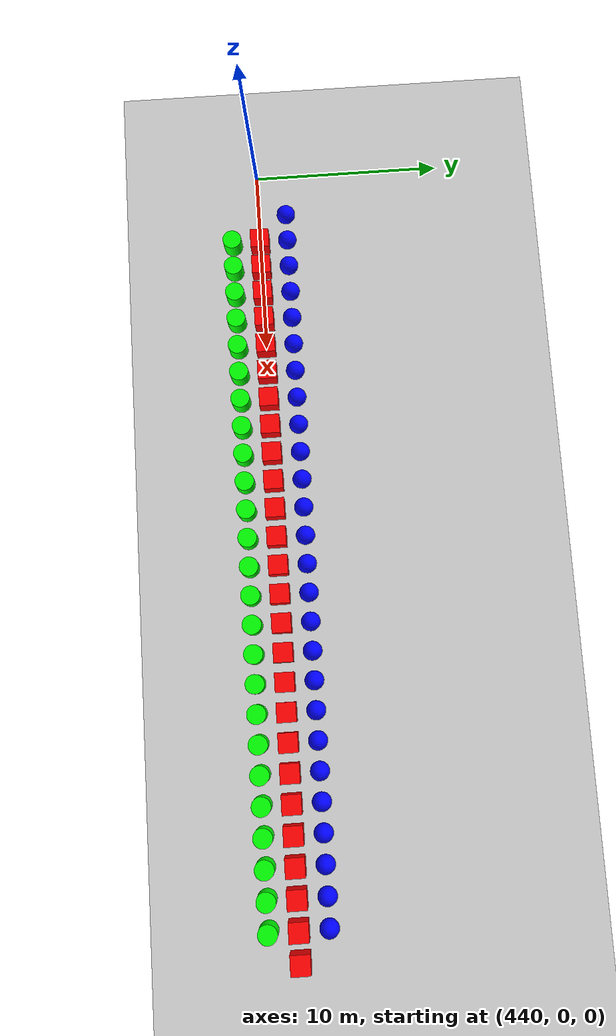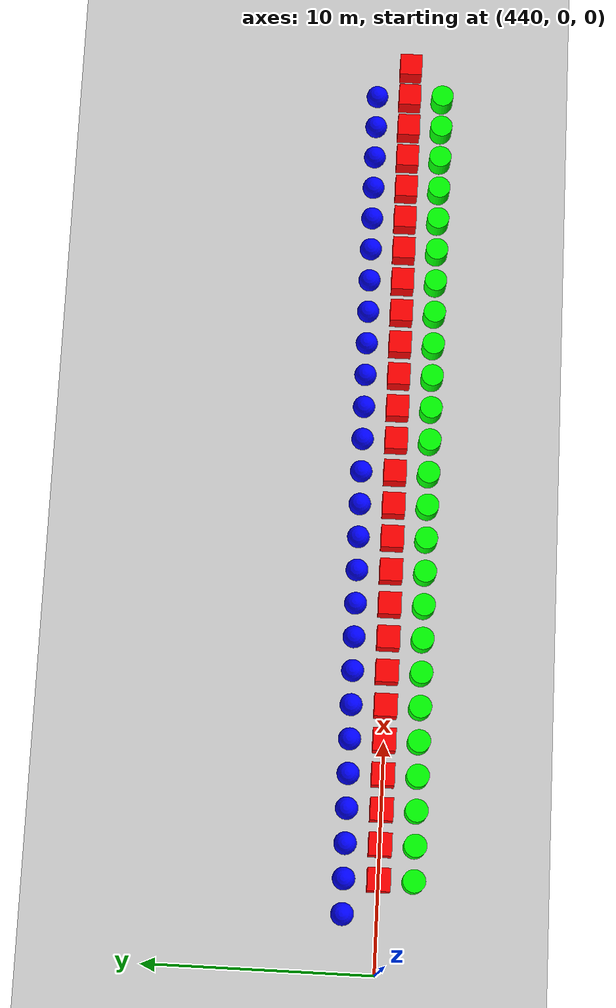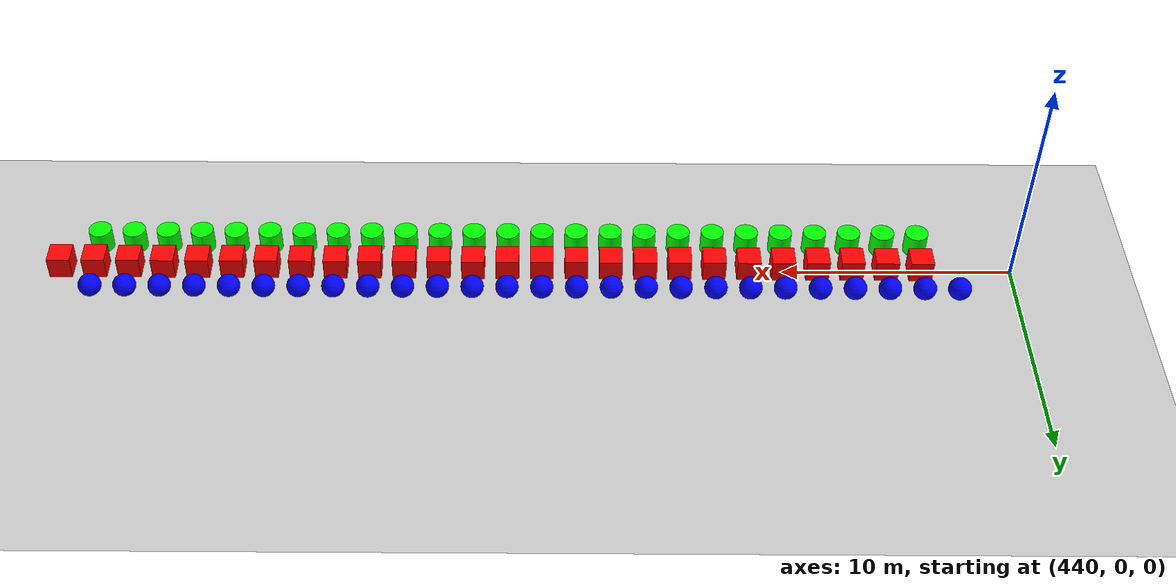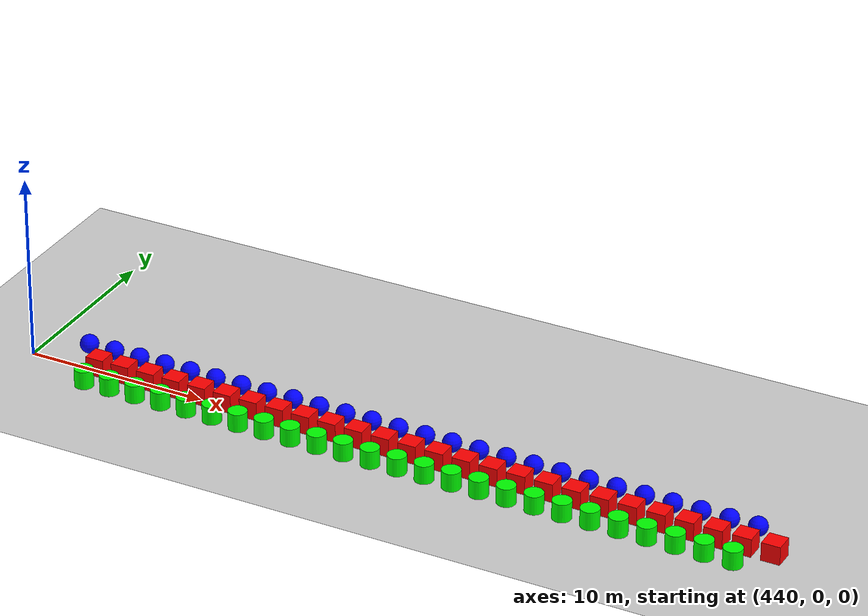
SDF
<sdf version="1.6">
 <world name="shapes">
  <model name="ground_plane">
   <static>true</static>
   <link name="link">
    <collision name="collision">
     <geometry><plane><normal>0 0 1</normal><size>100 100</size></plane></geometry>
    </collision>
    <visual name="visual">
     <geometry><plane><normal>0 0 1</normal><size>100 100</size></plane></geometry>
     <material>
      <ambient>0.8 0.8 0.8 1</ambient>
      <diffuse>0.8 0.8 0.8 1</diffuse>
      <specular>0.8 0.8 0.8 1</specular>
     </material>
    </visual>
   </link>
  </model>
  <model name="sphere_795">
   <static>false</static>
   <pose>442.5 1.5 0.5 0 0 0</pose>
   <link name="sphere_link">
    <inertial>
     <inertia><ixx>3</ixx><ixy>0</ixy><ixz>0</ixz><iyy>3</iyy><iyz>0</iyz><izz>3</izz></inertia>
     <mass>3.0</mass>
    </inertial>
    <collision name="sphere_collision"><geometry><sphere><radius>0.5</radius></sphere></geometry></collision>
    <visual name="sphere_visual">
     <geometry><sphere><radius>0.5</radius></sphere></geometry>
     <material><ambient>0 0 1 1</ambient><diffuse>0 0 1 1</diffuse><specular>0 0 1 1</specular></material>
    </visual>
   </link>
  </model>
  <model name="box_796">
   <static>false</static>
   <pose>444.0 0 0.5 0 0 0</pose>
   <link name="box_link">
    <inertial>
     <inertia><ixx>1</ixx><ixy>0</ixy><ixz>0</ixz><iyy>1</iyy><iyz>0</iyz><izz>1</izz></inertia>
     <mass>1.0</mass>
    </inertial>
    <collision name="box_collision"><geometry><box><size>1 1 1</size></box></geometry></collision>
    <visual name="box_visual">
     <geometry><box><size>1 1 1</size></box></geometry>
     <material><ambient>1 0 0 1</ambient><diffuse>1 0 0 1</diffuse><specular>1 0 0 1</specular></material>
    </visual>
   </link>
  </model>
  <model name="cylinder_796">
   <static>false</static>
   <pose>444.0 -1.5 0.5 0 0 0</pose>
   <link name="cylinder_link">
    <inertial>
     <inertia><ixx>2</ixx><ixy>0</ixy><ixz>0</ixz><iyy>2</iyy><iyz>0</iyz><izz>2</izz></inertia>
     <mass>2.0</mass>
    </inertial>
    <collision name="cylinder_collision">
     <geometry><cylinder><radius>0.5</radius><length>1.0</length></cylinder></geometry>
    </collision>
    <visual name="cylinder_visual">
     <geometry><cylinder><radius>0.5</radius><length>1.0</length></cylinder></geometry>
     <material><ambient>0 1 0 1</ambient><diffuse>0 1 0 1</diffuse><specular>0 1 0 1</specular></material>
    </visual>
   </link>
  </model>
  <model name="sphere_796">
   <static>false</static>
   <pose>444.0 1.5 0.5 0 0 0</pose>
   <link name="sphere_link">
    <inertial>
     <inertia><ixx>3</ixx><ixy>0</ixy><ixz>0</ixz><iyy>3</iyy><iyz>0</iyz><izz>3</izz></inertia>
     <mass>3.0</mass>
    </inertial>
    <collision name="sphere_collision"><geometry><sphere><radius>0.5</radius></sphere></geometry></collision>
    <visual name="sphere_visual">
     <geometry><sphere><radius>0.5</radius></sphere></geometry>
     <material><ambient>0 0 1 1</ambient><diffuse>0 0 1 1</diffuse><specular>0 0 1 1</specular></material>
    </visual>
   </link>
  </model>
  <model name="box_797">
   <static>false</static>
   <pose>445.5 0 0.5 0 0 0</pose>
   <link name="box_link">
    <inertial>
     <inertia><ixx>1</ixx><ixy>0</ixy><ixz>0</ixz><iyy>1</iyy><iyz>0</iyz><izz>1</izz></inertia>
     <mass>1.0</mass>
    </inertial>
    <collision name="box_collision"><geometry><box><size>1 1 1</size></box></geometry></collision>
    <visual name="box_visual">
     <geometry><box><size>1 1 1</size></box></geometry>
     <material><ambient>1 0 0 1</ambient><diffuse>1 0 0 1</diffuse><specular>1 0 0 1</specular></material>
    </visual>
   </link>
  </model>
  <model name="cylinder_797">
   <static>false</static>
   <pose>445.5 -1.5 0.5 0 0 0</pose>
   <link name="cylinder_link">
    <inertial>
     <inertia><ixx>2</ixx><ixy>0</ixy><ixz>0</ixz><iyy>2</iyy><iyz>0</iyz><izz>2</izz></inertia>
     <mass>2.0</mass>
    </inertial>
    <collision name="cylinder_collision">
     <geometry><cylinder><radius>0.5</radius><length>1.0</length></cylinder></geometry>
    </collision>
    <visual name="cylinder_visual">
     <geometry><cylinder><radius>0.5</radius><length>1.0</length></cylinder></geometry>
     <material><ambient>0 1 0 1</ambient><diffuse>0 1 0 1</diffuse><specular>0 1 0 1</specular></material>
    </visual>
   </link>
  </model>
  <model name="sphere_797">
   <static>false</static>
   <pose>445.5 1.5 0.5 0 0 0</pose>
   <link name="sphere_link">
    <inertial>
     <inertia><ixx>3</ixx><ixy>0</ixy><ixz>0</ixz><iyy>3</iyy><iyz>0</iyz><izz>3</izz></inertia>
     <mass>3.0</mass>
    </inertial>
    <collision name="sphere_collision"><geometry><sphere><radius>0.5</radius></sphere></geometry></collision>
    <visual name="sphere_visual">
     <geometry><sphere><radius>0.5</radius></sphere></geometry>
     <material><ambient>0 0 1 1</ambient><diffuse>0 0 1 1</diffuse><specular>0 0 1 1</specular></material>
    </visual>
   </link>
  </model>
  <model name="box_798">
   <static>false</static>
   <pose>447.0 0 0.5 0 0 0</pose>
   <link name="box_link">
    <inertial>
     <inertia><ixx>1</ixx><ixy>0</ixy><ixz>0</ixz><iyy>1</iyy><iyz>0</iyz><izz>1</izz></inertia>
     <mass>1.0</mass>
    </inertial>
    <collision name="box_collision"><geometry><box><size>1 1 1</size></box></geometry></collision>
    <visual name="box_visual">
     <geometry><box><size>1 1 1</size></box></geometry>
     <material><ambient>1 0 0 1</ambient><diffuse>1 0 0 1</diffuse><specular>1 0 0 1</specular></material>
    </visual>
   </link>
  </model>
  <model name="cylinder_798">
   <static>false</static>
   <pose>447.0 -1.5 0.5 0 0 0</pose>
   <link name="cylinder_link">
    <inertial>
     <inertia><ixx>2</ixx><ixy>0</ixy><ixz>0</ixz><iyy>2</iyy><iyz>0</iyz><izz>2</izz></inertia>
     <mass>2.0</mass>
    </inertial>
    <collision name="cylinder_collision">
     <geometry><cylinder><radius>0.5</radius><length>1.0</length></cylinder></geometry>
    </collision>
    <visual name="cylinder_visual">
     <geometry><cylinder><radius>0.5</radius><length>1.0</length></cylinder></geometry>
     <material><ambient>0 1 0 1</ambient><diffuse>0 1 0 1</diffuse><specular>0 1 0 1</specular></material>
    </visual>
   </link>
  </model>
  <model name="sphere_798">
   <static>false</static>
   <pose>447.0 1.5 0.5 0 0 0</pose>
   <link name="sphere_link">
    <inertial>
     <inertia><ixx>3</ixx><ixy>0</ixy><ixz>0</ixz><iyy>3</iyy><iyz>0</iyz><izz>3</izz></inertia>
     <mass>3.0</mass>
    </inertial>
    <collision name="sphere_collision"><geometry><sphere><radius>0.5</radius></sphere></geometry></collision>
    <visual name="sphere_visual">
     <geometry><sphere><radius>0.5</radius></sphere></geometry>
     <material><ambient>0 0 1 1</ambient><diffuse>0 0 1 1</diffuse><specular>0 0 1 1</specular></material>
    </visual>
   </link>
  </model>
  <model name="box_799">
   <static>false</static>
   <pose>448.5 0 0.5 0 0 0</pose>
   <link name="box_link">
    <inertial>
     <inertia><ixx>1</ixx><ixy>0</ixy><ixz>0</ixz><iyy>1</iyy><iyz>0</iyz><izz>1</izz></inertia>
     <mass>1.0</mass>
    </inertial>
    <collision name="box_collision"><geometry><box><size>1 1 1</size></box></geometry></collision>
    <visual name="box_visual">
     <geometry><box><size>1 1 1</size></box></geometry>
     <material><ambient>1 0 0 1</ambient><diffuse>1 0 0 1</diffuse><specular>1 0 0 1</specular></material>
    </visual>
   </link>
  </model>
  <model name="cylinder_799">
   <static>false</static>
   <pose>448.5 -1.5 0.5 0 0 0</pose>
   <link name="cylinder_link">
    <inertial>
     <inertia><ixx>2</ixx><ixy>0</ixy><ixz>0</ixz><iyy>2</iyy><iyz>0</iyz><izz>2</izz></inertia>
     <mass>2.0</mass>
    </inertial>
    <collision name="cylinder_collision">
     <geometry><cylinder><radius>0.5</radius><length>1.0</length></cylinder></geometry>
    </collision>
    <visual name="cylinder_visual">
     <geometry><cylinder><radius>0.5</radius><length>1.0</length></cylinder></geometry>
     <material><ambient>0 1 0 1</ambient><diffuse>0 1 0 1</diffuse><specular>0 1 0 1</specular></material>
    </visual>
   </link>
  </model>
  <model name="sphere_799">
   <static>false</static>
   <pose>448.5 1.5 0.5 0 0 0</pose>
   <link name="sphere_link">
    <inertial>
     <inertia><ixx>3</ixx><ixy>0</ixy><ixz>0</ixz><iyy>3</iyy><iyz>0</iyz><izz>3</izz></inertia>
     <mass>3.0</mass>
    </inertial>
    <collision name="sphere_collision"><geometry><sphere><radius>0.5</radius></sphere></geometry></collision>
    <visual name="sphere_visual">
     <geometry><sphere><radius>0.5</radius></sphere></geometry>
     <material><ambient>0 0 1 1</ambient><diffuse>0 0 1 1</diffuse><specular>0 0 1 1</specular></material>
    </visual>
   </link>
  </model>
  <model name="box_800">
   <static>false</static>
   <pose>450.0 0 0.5 0 0 0</pose>
   <link name="box_link">
    <inertial>
     <inertia><ixx>1</ixx><ixy>0</ixy><ixz>0</ixz><iyy>1</iyy><iyz>0</iyz><izz>1</izz></inertia>
     <mass>1.0</mass>
    </inertial>
    <collision name="box_collision"><geometry><box><size>1 1 1</size></box></geometry></collision>
    <visual name="box_visual">
     <geometry><box><size>1 1 1</size></box></geometry>
     <material><ambient>1 0 0 1</ambient><diffuse>1 0 0 1</diffuse><specular>1 0 0 1</specular></material>
    </visual>
   </link>
  </model>
  <model name="cylinder_800">
   <static>false</static>
   <pose>450.0 -1.5 0.5 0 0 0</pose>
   <link name="cylinder_link">
    <inertial>
     <inertia><ixx>2</ixx><ixy>0</ixy><ixz>0</ixz><iyy>2</iyy><iyz>0</iyz><izz>2</izz></inertia>
     <mass>2.0</mass>
    </inertial>
    <collision name="cylinder_collision">
     <geometry><cylinder><radius>0.5</radius><length>1.0</length></cylinder></geometry>
    </collision>
    <visual name="cylinder_visual">
     <geometry><cylinder><radius>0.5</radius><length>1.0</length></cylinder></geometry>
     <material><ambient>0 1 0 1</ambient><diffuse>0 1 0 1</diffuse><specular>0 1 0 1</specular></material>
    </visual>
   </link>
  </model>
  <model name="sphere_800">
   <static>false</static>
   <pose>450.0 1.5 0.5 0 0 0</pose>
   <link name="sphere_link">
    <inertial>
     <inertia><ixx>3</ixx><ixy>0</ixy><ixz>0</ixz><iyy>3</iyy><iyz>0</iyz><izz>3</izz></inertia>
     <mass>3.0</mass>
    </inertial>
    <collision name="sphere_collision"><geometry><sphere><radius>0.5</radius></sphere></geometry></collision>
    <visual name="sphere_visual">
     <geometry><sphere><radius>0.5</radius></sphere></geometry>
     <material><ambient>0 0 1 1</ambient><diffuse>0 0 1 1</diffuse><specular>0 0 1 1</specular></material>
    </visual>
   </link>
  </model>
  <model name="box_801">
   <static>false</static>
   <pose>451.5 0 0.5 0 0 0</pose>
   <link name="box_link">
    <inertial>
     <inertia><ixx>1</ixx><ixy>0</ixy><ixz>0</ixz><iyy>1</iyy><iyz>0</iyz><izz>1</izz></inertia>
     <mass>1.0</mass>
    </inertial>
    <collision name="box_collision"><geometry><box><size>1 1 1</size></box></geometry></collision>
    <visual name="box_visual">
     <geometry><box><size>1 1 1</size></box></geometry>
     <material><ambient>1 0 0 1</ambient><diffuse>1 0 0 1</diffuse><specular>1 0 0 1</specular></material>
    </visual>
   </link>
  </model>
  <model name="cylinder_801">
   <static>false</static>
   <pose>451.5 -1.5 0.5 0 0 0</pose>
   <link name="cylinder_link">
    <inertial>
     <inertia><ixx>2</ixx><ixy>0</ixy><ixz>0</ixz><iyy>2</iyy><iyz>0</iyz><izz>2</izz></inertia>
     <mass>2.0</mass>
    </inertial>
    <collision name="cylinder_collision">
     <geometry><cylinder><radius>0.5</radius><length>1.0</length></cylinder></geometry>
    </collision>
    <visual name="cylinder_visual">
     <geometry><cylinder><radius>0.5</radius><length>1.0</length></cylinder></geometry>
     <material><ambient>0 1 0 1</ambient><diffuse>0 1 0 1</diffuse><specular>0 1 0 1</specular></material>
    </visual>
   </link>
  </model>
  <model name="sphere_801">
   <static>false</static>
   <pose>451.5 1.5 0.5 0 0 0</pose>
   <link name="sphere_link">
    <inertial>
     <inertia><ixx>3</ixx><ixy>0</ixy><ixz>0</ixz><iyy>3</iyy><iyz>0</iyz><izz>3</izz></inertia>
     <mass>3.0</mass>
    </inertial>
    <collision name="sphere_collision"><geometry><sphere><radius>0.5</radius></sphere></geometry></collision>
    <visual name="sphere_visual">
     <geometry><sphere><radius>0.5</radius></sphere></geometry>
     <material><ambient>0 0 1 1</ambient><diffuse>0 0 1 1</diffuse><specular>0 0 1 1</specular></material>
    </visual>
   </link>
  </model>
  <model name="box_802">
   <static>false</static>
   <pose>453.0 0 0.5 0 0 0</pose>
   <link name="box_link">
    <inertial>
     <inertia><ixx>1</ixx><ixy>0</ixy><ixz>0</ixz><iyy>1</iyy><iyz>0</iyz><izz>1</izz></inertia>
     <mass>1.0</mass>
    </inertial>
    <collision name="box_collision"><geometry><box><size>1 1 1</size></box></geometry></collision>
    <visual name="box_visual">
     <geometry><box><size>1 1 1</size></box></geometry>
     <material><ambient>1 0 0 1</ambient><diffuse>1 0 0 1</diffuse><specular>1 0 0 1</specular></material>
    </visual>
   </link>
  </model>
  <model name="cylinder_802">
   <static>false</static>
   <pose>453.0 -1.5 0.5 0 0 0</pose>
   <link name="cylinder_link">
    <inertial>
     <inertia><ixx>2</ixx><ixy>0</ixy><ixz>0</ixz><iyy>2</iyy><iyz>0</iyz><izz>2</izz></inertia>
     <mass>2.0</mass>
    </inertial>
    <collision name="cylinder_collision">
     <geometry><cylinder><radius>0.5</radius><length>1.0</length></cylinder></geometry>
    </collision>
    <visual name="cylinder_visual">
     <geometry><cylinder><radius>0.5</radius><length>1.0</length></cylinder></geometry>
     <material><ambient>0 1 0 1</ambient><diffuse>0 1 0 1</diffuse><specular>0 1 0 1</specular></material>
    </visual>
   </link>
  </model>
  <model name="sphere_802">
   <static>false</static>
   <pose>453.0 1.5 0.5 0 0 0</pose>
   <link name="sphere_link">
    <inertial>
     <inertia><ixx>3</ixx><ixy>0</ixy><ixz>0</ixz><iyy>3</iyy><iyz>0</iyz><izz>3</izz></inertia>
     <mass>3.0</mass>
    </inertial>
    <collision name="sphere_collision"><geometry><sphere><radius>0.5</radius></sphere></geometry></collision>
    <visual name="sphere_visual">
     <geometry><sphere><radius>0.5</radius></sphere></geometry>
     <material><ambient>0 0 1 1</ambient><diffuse>0 0 1 1</diffuse><specular>0 0 1 1</specular></material>
    </visual>
   </link>
  </model>
  <model name="box_803">
   <static>false</static>
   <pose>454.5 0 0.5 0 0 0</pose>
   <link name="box_link">
    <inertial>
     <inertia><ixx>1</ixx><ixy>0</ixy><ixz>0</ixz><iyy>1</iyy><iyz>0</iyz><izz>1</izz></inertia>
     <mass>1.0</mass>
    </inertial>
    <collision name="box_collision"><geometry><box><size>1 1 1</size></box></geometry></collision>
    <visual name="box_visual">
     <geometry><box><size>1 1 1</size></box></geometry>
     <material><ambient>1 0 0 1</ambient><diffuse>1 0 0 1</diffuse><specular>1 0 0 1</specular></material>
    </visual>
   </link>
  </model>
  <model name="cylinder_803">
   <static>false</static>
   <pose>454.5 -1.5 0.5 0 0 0</pose>
   <link name="cylinder_link">
    <inertial>
     <inertia><ixx>2</ixx><ixy>0</ixy><ixz>0</ixz><iyy>2</iyy><iyz>0</iyz><izz>2</izz></inertia>
     <mass>2.0</mass>
    </inertial>
    <collision name="cylinder_collision">
     <geometry><cylinder><radius>0.5</radius><length>1.0</length></cylinder></geometry>
    </collision>
    <visual name="cylinder_visual">
     <geometry><cylinder><radius>0.5</radius><length>1.0</length></cylinder></geometry>
     <material><ambient>0 1 0 1</ambient><diffuse>0 1 0 1</diffuse><specular>0 1 0 1</specular></material>
    </visual>
   </link>
  </model>
  <model name="sphere_803">
   <static>false</static>
   <pose>454.5 1.5 0.5 0 0 0</pose>
   <link name="sphere_link">
    <inertial>
     <inertia><ixx>3</ixx><ixy>0</ixy><ixz>0</ixz><iyy>3</iyy><iyz>0</iyz><izz>3</izz></inertia>
     <mass>3.0</mass>
    </inertial>
    <collision name="sphere_collision"><geometry><sphere><radius>0.5</radius></sphere></geometry></collision>
    <visual name="sphere_visual">
     <geometry><sphere><radius>0.5</radius></sphere></geometry>
     <material><ambient>0 0 1 1</ambient><diffuse>0 0 1 1</diffuse><specular>0 0 1 1</specular></material>
    </visual>
   </link>
  </model>
  <model name="box_804">
   <static>false</static>
   <pose>456.0 0 0.5 0 0 0</pose>
   <link name="box_link">
    <inertial>
     <inertia><ixx>1</ixx><ixy>0</ixy><ixz>0</ixz><iyy>1</iyy><iyz>0</iyz><izz>1</izz></inertia>
     <mass>1.0</mass>
    </inertial>
    <collision name="box_collision"><geometry><box><size>1 1 1</size></box></geometry></collision>
    <visual name="box_visual">
     <geometry><box><size>1 1 1</size></box></geometry>
     <material><ambient>1 0 0 1</ambient><diffuse>1 0 0 1</diffuse><specular>1 0 0 1</specular></material>
    </visual>
   </link>
  </model>
  <model name="cylinder_804">
   <static>false</static>
   <pose>456.0 -1.5 0.5 0 0 0</pose>
   <link name="cylinder_link">
    <inertial>
     <inertia><ixx>2</ixx><ixy>0</ixy><ixz>0</ixz><iyy>2</iyy><iyz>0</iyz><izz>2</izz></inertia>
     <mass>2.0</mass>
    </inertial>
    <collision name="cylinder_collision">
     <geometry><cylinder><radius>0.5</radius><length>1.0</length></cylinder></geometry>
    </collision>
    <visual name="cylinder_visual">
     <geometry><cylinder><radius>0.5</radius><length>1.0</length></cylinder></geometry>
     <material><ambient>0 1 0 1</ambient><diffuse>0 1 0 1</diffuse><specular>0 1 0 1</specular></material>
    </visual>
   </link>
  </model>
  <model name="sphere_804">
   <static>false</static>
   <pose>456.0 1.5 0.5 0 0 0</pose>
   <link name="sphere_link">
    <inertial>
     <inertia><ixx>3</ixx><ixy>0</ixy><ixz>0</ixz><iyy>3</iyy><iyz>0</iyz><izz>3</izz></inertia>
     <mass>3.0</mass>
    </inertial>
    <collision name="sphere_collision"><geometry><sphere><radius>0.5</radius></sphere></geometry></collision>
    <visual name="sphere_visual">
     <geometry><sphere><radius>0.5</radius></sphere></geometry>
     <material><ambient>0 0 1 1</ambient><diffuse>0 0 1 1</diffuse><specular>0 0 1 1</specular></material>
    </visual>
   </link>
  </model>
  <model name="box_805">
   <static>false</static>
   <pose>457.5 0 0.5 0 0 0</pose>
   <link name="box_link">
    <inertial>
     <inertia><ixx>1</ixx><ixy>0</ixy><ixz>0</ixz><iyy>1</iyy><iyz>0</iyz><izz>1</izz></inertia>
     <mass>1.0</mass>
    </inertial>
    <collision name="box_collision"><geometry><box><size>1 1 1</size></box></geometry></collision>
    <visual name="box_visual">
     <geometry><box><size>1 1 1</size></box></geometry>
     <material><ambient>1 0 0 1</ambient><diffuse>1 0 0 1</diffuse><specular>1 0 0 1</specular></material>
    </visual>
   </link>
  </model>
  <model name="cylinder_805">
   <static>false</static>
   <pose>457.5 -1.5 0.5 0 0 0</pose>
   <link name="cylinder_link">
    <inertial>
     <inertia><ixx>2</ixx><ixy>0</ixy><ixz>0</ixz><iyy>2</iyy><iyz>0</iyz><izz>2</izz></inertia>
     <mass>2.0</mass>
    </inertial>
    <collision name="cylinder_collision">
     <geometry><cylinder><radius>0.5</radius><length>1.0</length></cylinder></geometry>
    </collision>
    <visual name="cylinder_visual">
     <geometry><cylinder><radius>0.5</radius><length>1.0</length></cylinder></geometry>
     <material><ambient>0 1 0 1</ambient><diffuse>0 1 0 1</diffuse><specular>0 1 0 1</specular></material>
    </visual>
   </link>
  </model>
  <model name="sphere_805">
   <static>false</static>
   <pose>457.5 1.5 0.5 0 0 0</pose>
   <link name="sphere_link">
    <inertial>
     <inertia><ixx>3</ixx><ixy>0</ixy><ixz>0</ixz><iyy>3</iyy><iyz>0</iyz><izz>3</izz></inertia>
     <mass>3.0</mass>
    </inertial>
    <collision name="sphere_collision"><geometry><sphere><radius>0.5</radius></sphere></geometry></collision>
    <visual name="sphere_visual">
     <geometry><sphere><radius>0.5</radius></sphere></geometry>
     <material><ambient>0 0 1 1</ambient><diffuse>0 0 1 1</diffuse><specular>0 0 1 1</specular></material>
    </visual>
   </link>
  </model>
  <model name="box_806">
   <static>false</static>
   <pose>459.0 0 0.5 0 0 0</pose>
   <link name="box_link">
    <inertial>
     <inertia><ixx>1</ixx><ixy>0</ixy><ixz>0</ixz><iyy>1</iyy><iyz>0</iyz><izz>1</izz></inertia>
     <mass>1.0</mass>
    </inertial>
    <collision name="box_collision"><geometry><box><size>1 1 1</size></box></geometry></collision>
    <visual name="box_visual">
     <geometry><box><size>1 1 1</size></box></geometry>
     <material><ambient>1 0 0 1</ambient><diffuse>1 0 0 1</diffuse><specular>1 0 0 1</specular></material>
    </visual>
   </link>
  </model>
  <model name="cylinder_806">
   <static>false</static>
   <pose>459.0 -1.5 0.5 0 0 0</pose>
   <link name="cylinder_link">
    <inertial>
     <inertia><ixx>2</ixx><ixy>0</ixy><ixz>0</ixz><iyy>2</iyy><iyz>0</iyz><izz>2</izz></inertia>
     <mass>2.0</mass>
    </inertial>
    <collision name="cylinder_collision">
     <geometry><cylinder><radius>0.5</radius><length>1.0</length></cylinder></geometry>
    </collision>
    <visual name="cylinder_visual">
     <geometry><cylinder><radius>0.5</radius><length>1.0</length></cylinder></geometry>
     <material><ambient>0 1 0 1</ambient><diffuse>0 1 0 1</diffuse><specular>0 1 0 1</specular></material>
    </visual>
   </link>
  </model>
  <model name="sphere_806">
   <static>false</static>
   <pose>459.0 1.5 0.5 0 0 0</pose>
   <link name="sphere_link">
    <inertial>
     <inertia><ixx>3</ixx><ixy>0</ixy><ixz>0</ixz><iyy>3</iyy><iyz>0</iyz><izz>3</izz></inertia>
     <mass>3.0</mass>
    </inertial>
    <collision name="sphere_collision"><geometry><sphere><radius>0.5</radius></sphere></geometry></collision>
    <visual name="sphere_visual">
     <geometry><sphere><radius>0.5</radius></sphere></geometry>
     <material><ambient>0 0 1 1</ambient><diffuse>0 0 1 1</diffuse><specular>0 0 1 1</specular></material>
    </visual>
   </link>
  </model>
  <model name="box_807">
   <static>false</static>
   <pose>460.5 0 0.5 0 0 0</pose>
   <link name="box_link">
    <inertial>
     <inertia><ixx>1</ixx><ixy>0</ixy><ixz>0</ixz><iyy>1</iyy><iyz>0</iyz><izz>1</izz></inertia>
     <mass>1.0</mass>
    </inertial>
    <collision name="box_collision"><geometry><box><size>1 1 1</size></box></geometry></collision>
    <visual name="box_visual">
     <geometry><box><size>1 1 1</size></box></geometry>
     <material><ambient>1 0 0 1</ambient><diffuse>1 0 0 1</diffuse><specular>1 0 0 1</specular></material>
    </visual>
   </link>
  </model>
  <model name="cylinder_807">
   <static>false</static>
   <pose>460.5 -1.5 0.5 0 0 0</pose>
   <link name="cylinder_link">
    <inertial>
     <inertia><ixx>2</ixx><ixy>0</ixy><ixz>0</ixz><iyy>2</iyy><iyz>0</iyz><izz>2</izz></inertia>
     <mass>2.0</mass>
    </inertial>
    <collision name="cylinder_collision">
     <geometry><cylinder><radius>0.5</radius><length>1.0</length></cylinder></geometry>
    </collision>
    <visual name="cylinder_visual">
     <geometry><cylinder><radius>0.5</radius><length>1.0</length></cylinder></geometry>
     <material><ambient>0 1 0 1</ambient><diffuse>0 1 0 1</diffuse><specular>0 1 0 1</specular></material>
    </visual>
   </link>
  </model>
  <model name="sphere_807">
   <static>false</static>
   <pose>460.5 1.5 0.5 0 0 0</pose>
   <link name="sphere_link">
    <inertial>
     <inertia><ixx>3</ixx><ixy>0</ixy><ixz>0</ixz><iyy>3</iyy><iyz>0</iyz><izz>3</izz></inertia>
     <mass>3.0</mass>
    </inertial>
    <collision name="sphere_collision"><geometry><sphere><radius>0.5</radius></sphere></geometry></collision>
    <visual name="sphere_visual">
     <geometry><sphere><radius>0.5</radius></sphere></geometry>
     <material><ambient>0 0 1 1</ambient><diffuse>0 0 1 1</diffuse><specular>0 0 1 1</specular></material>
    </visual>
   </link>
  </model>
  <model name="box_808">
   <static>false</static>
   <pose>462.0 0 0.5 0 0 0</pose>
   <link name="box_link">
    <inertial>
     <inertia><ixx>1</ixx><ixy>0</ixy><ixz>0</ixz><iyy>1</iyy><iyz>0</iyz><izz>1</izz></inertia>
     <mass>1.0</mass>
    </inertial>
    <collision name="box_collision"><geometry><box><size>1 1 1</size></box></geometry></collision>
    <visual name="box_visual">
     <geometry><box><size>1 1 1</size></box></geometry>
     <material><ambient>1 0 0 1</ambient><diffuse>1 0 0 1</diffuse><specular>1 0 0 1</specular></material>
    </visual>
   </link>
  </model>
  <model name="cylinder_808">
   <static>false</static>
   <pose>462.0 -1.5 0.5 0 0 0</pose>
   <link name="cylinder_link">
    <inertial>
     <inertia><ixx>2</ixx><ixy>0</ixy><ixz>0</ixz><iyy>2</iyy><iyz>0</iyz><izz>2</izz></inertia>
     <mass>2.0</mass>
    </inertial>
    <collision name="cylinder_collision">
     <geometry><cylinder><radius>0.5</radius><length>1.0</length></cylinder></geometry>
    </collision>
    <visual name="cylinder_visual">
     <geometry><cylinder><radius>0.5</radius><length>1.0</length></cylinder></geometry>
     <material><ambient>0 1 0 1</ambient><diffuse>0 1 0 1</diffuse><specular>0 1 0 1</specular></material>
    </visual>
   </link>
  </model>
  <model name="sphere_808">
   <static>false</static>
   <pose>462.0 1.5 0.5 0 0 0</pose>
   <link name="sphere_link">
    <inertial>
     <inertia><ixx>3</ixx><ixy>0</ixy><ixz>0</ixz><iyy>3</iyy><iyz>0</iyz><izz>3</izz></inertia>
     <mass>3.0</mass>
    </inertial>
    <collision name="sphere_collision"><geometry><sphere><radius>0.5</radius></sphere></geometry></collision>
    <visual name="sphere_visual">
     <geometry><sphere><radius>0.5</radius></sphere></geometry>
     <material><ambient>0 0 1 1</ambient><diffuse>0 0 1 1</diffuse><specular>0 0 1 1</specular></material>
    </visual>
   </link>
  </model>
  <model name="box_809">
   <static>false</static>
   <pose>463.5 0 0.5 0 0 0</pose>
   <link name="box_link">
    <inertial>
     <inertia><ixx>1</ixx><ixy>0</ixy><ixz>0</ixz><iyy>1</iyy><iyz>0</iyz><izz>1</izz></inertia>
     <mass>1.0</mass>
    </inertial>
    <collision name="box_collision"><geometry><box><size>1 1 1</size></box></geometry></collision>
    <visual name="box_visual">
     <geometry><box><size>1 1 1</size></box></geometry>
     <material><ambient>1 0 0 1</ambient><diffuse>1 0 0 1</diffuse><specular>1 0 0 1</specular></material>
    </visual>
   </link>
  </model>
  <model name="cylinder_809">
   <static>false</static>
   <pose>463.5 -1.5 0.5 0 0 0</pose>
   <link name="cylinder_link">
    <inertial>
     <inertia><ixx>2</ixx><ixy>0</ixy><ixz>0</ixz><iyy>2</iyy><iyz>0</iyz><izz>2</izz></inertia>
     <mass>2.0</mass>
    </inertial>
    <collision name="cylinder_collision">
     <geometry><cylinder><radius>0.5</radius><length>1.0</length></cylinder></geometry>
    </collision>
    <visual name="cylinder_visual">
     <geometry><cylinder><radius>0.5</radius><length>1.0</length></cylinder></geometry>
     <material><ambient>0 1 0 1</ambient><diffuse>0 1 0 1</diffuse><specular>0 1 0 1</specular></material>
    </visual>
   </link>
  </model>
  <model name="sphere_809">
   <static>false</static>
   <pose>463.5 1.5 0.5 0 0 0</pose>
   <link name="sphere_link">
    <inertial>
     <inertia><ixx>3</ixx><ixy>0</ixy><ixz>0</ixz><iyy>3</iyy><iyz>0</iyz><izz>3</izz></inertia>
     <mass>3.0</mass>
    </inertial>
    <collision name="sphere_collision"><geometry><sphere><radius>0.5</radius></sphere></geometry></collision>
    <visual name="sphere_visual">
     <geometry><sphere><radius>0.5</radius></sphere></geometry>
     <material><ambient>0 0 1 1</ambient><diffuse>0 0 1 1</diffuse><specular>0 0 1 1</specular></material>
    </visual>
   </link>
  </model>
  <model name="box_810">
   <static>false</static>
   <pose>465.0 0 0.5 0 0 0</pose>
   <link name="box_link">
    <inertial>
     <inertia><ixx>1</ixx><ixy>0</ixy><ixz>0</ixz><iyy>1</iyy><iyz>0</iyz><izz>1</izz></inertia>
     <mass>1.0</mass>
    </inertial>
    <collision name="box_collision"><geometry><box><size>1 1 1</size></box></geometry></collision>
    <visual name="box_visual">
     <geometry><box><size>1 1 1</size></box></geometry>
     <material><ambient>1 0 0 1</ambient><diffuse>1 0 0 1</diffuse><specular>1 0 0 1</specular></material>
    </visual>
   </link>
  </model>
  <model name="cylinder_810">
   <static>false</static>
   <pose>465.0 -1.5 0.5 0 0 0</pose>
   <link name="cylinder_link">
    <inertial>
     <inertia><ixx>2</ixx><ixy>0</ixy><ixz>0</ixz><iyy>2</iyy><iyz>0</iyz><izz>2</izz></inertia>
     <mass>2.0</mass>
    </inertial>
    <collision name="cylinder_collision">
     <geometry><cylinder><radius>0.5</radius><length>1.0</length></cylinder></geometry>
    </collision>
    <visual name="cylinder_visual">
     <geometry><cylinder><radius>0.5</radius><length>1.0</length></cylinder></geometry>
     <material><ambient>0 1 0 1</ambient><diffuse>0 1 0 1</diffuse><specular>0 1 0 1</specular></material>
    </visual>
   </link>
  </model>
  <model name="sphere_810">
   <static>false</static>
   <pose>465.0 1.5 0.5 0 0 0</pose>
   <link name="sphere_link">
    <inertial>
     <inertia><ixx>3</ixx><ixy>0</ixy><ixz>0</ixz><iyy>3</iyy><iyz>0</iyz><izz>3</izz></inertia>
     <mass>3.0</mass>
    </inertial>
    <collision name="sphere_collision"><geometry><sphere><radius>0.5</radius></sphere></geometry></collision>
    <visual name="sphere_visual">
     <geometry><sphere><radius>0.5</radius></sphere></geometry>
     <material><ambient>0 0 1 1</ambient><diffuse>0 0 1 1</diffuse><specular>0 0 1 1</specular></material>
    </visual>
   </link>
  </model>
  <model name="box_811">
   <static>false</static>
   <pose>466.5 0 0.5 0 0 0</pose>
   <link name="box_link">
    <inertial>
     <inertia><ixx>1</ixx><ixy>0</ixy><ixz>0</ixz><iyy>1</iyy><iyz>0</iyz><izz>1</izz></inertia>
     <mass>1.0</mass>
    </inertial>
    <collision name="box_collision"><geometry><box><size>1 1 1</size></box></geometry></collision>
    <visual name="box_visual">
     <geometry><box><size>1 1 1</size></box></geometry>
     <material><ambient>1 0 0 1</ambient><diffuse>1 0 0 1</diffuse><specular>1 0 0 1</specular></material>
    </visual>
   </link>
  </model>
  <model name="cylinder_811">
   <static>false</static>
   <pose>466.5 -1.5 0.5 0 0 0</pose>
   <link name="cylinder_link">
    <inertial>
     <inertia><ixx>2</ixx><ixy>0</ixy><ixz>0</ixz><iyy>2</iyy><iyz>0</iyz><izz>2</izz></inertia>
     <mass>2.0</mass>
    </inertial>
    <collision name="cylinder_collision">
     <geometry><cylinder><radius>0.5</radius><length>1.0</length></cylinder></geometry>
    </collision>
    <visual name="cylinder_visual">
     <geometry><cylinder><radius>0.5</radius><length>1.0</length></cylinder></geometry>
     <material><ambient>0 1 0 1</ambient><diffuse>0 1 0 1</diffuse><specular>0 1 0 1</specular></material>
    </visual>
   </link>
  </model>
  <model name="sphere_811">
   <static>false</static>
   <pose>466.5 1.5 0.5 0 0 0</pose>
   <link name="sphere_link">
    <inertial>
     <inertia><ixx>3</ixx><ixy>0</ixy><ixz>0</ixz><iyy>3</iyy><iyz>0</iyz><izz>3</izz></inertia>
     <mass>3.0</mass>
    </inertial>
    <collision name="sphere_collision"><geometry><sphere><radius>0.5</radius></sphere></geometry></collision>
    <visual name="sphere_visual">
     <geometry><sphere><radius>0.5</radius></sphere></geometry>
     <material><ambient>0 0 1 1</ambient><diffuse>0 0 1 1</diffuse><specular>0 0 1 1</specular></material>
    </visual>
   </link>
  </model>
  <model name="box_812">
   <static>false</static>
   <pose>468.0 0 0.5 0 0 0</pose>
   <link name="box_link">
    <inertial>
     <inertia><ixx>1</ixx><ixy>0</ixy><ixz>0</ixz><iyy>1</iyy><iyz>0</iyz><izz>1</izz></inertia>
     <mass>1.0</mass>
    </inertial>
    <collision name="box_collision"><geometry><box><size>1 1 1</size></box></geometry></collision>
    <visual name="box_visual">
     <geometry><box><size>1 1 1</size></box></geometry>
     <material><ambient>1 0 0 1</ambient><diffuse>1 0 0 1</diffuse><specular>1 0 0 1</specular></material>
    </visual>
   </link>
  </model>
  <model name="cylinder_812">
   <static>false</static>
   <pose>468.0 -1.5 0.5 0 0 0</pose>
   <link name="cylinder_link">
    <inertial>
     <inertia><ixx>2</ixx><ixy>0</ixy><ixz>0</ixz><iyy>2</iyy><iyz>0</iyz><izz>2</izz></inertia>
     <mass>2.0</mass>
    </inertial>
    <collision name="cylinder_collision">
     <geometry><cylinder><radius>0.5</radius><length>1.0</length></cylinder></geometry>
    </collision>
    <visual name="cylinder_visual">
     <geometry><cylinder><radius>0.5</radius><length>1.0</length></cylinder></geometry>
     <material><ambient>0 1 0 1</ambient><diffuse>0 1 0 1</diffuse><specular>0 1 0 1</specular></material>
    </visual>
   </link>
  </model>
  <model name="sphere_812">
   <static>false</static>
   <pose>468.0 1.5 0.5 0 0 0</pose>
   <link name="sphere_link">
    <inertial>
     <inertia><ixx>3</ixx><ixy>0</ixy><ixz>0</ixz><iyy>3</iyy><iyz>0</iyz><izz>3</izz></inertia>
     <mass>3.0</mass>
    </inertial>
    <collision name="sphere_collision"><geometry><sphere><radius>0.5</radius></sphere></geometry></collision>
    <visual name="sphere_visual">
     <geometry><sphere><radius>0.5</radius></sphere></geometry>
     <material><ambient>0 0 1 1</ambient><diffuse>0 0 1 1</diffuse><specular>0 0 1 1</specular></material>
    </visual>
   </link>
  </model>
  <model name="box_813">
   <static>false</static>
   <pose>469.5 0 0.5 0 0 0</pose>
   <link name="box_link">
    <inertial>
     <inertia><ixx>1</ixx><ixy>0</ixy><ixz>0</ixz><iyy>1</iyy><iyz>0</iyz><izz>1</izz></inertia>
     <mass>1.0</mass>
    </inertial>
    <collision name="box_collision"><geometry><box><size>1 1 1</size></box></geometry></collision>
    <visual name="box_visual">
     <geometry><box><size>1 1 1</size></box></geometry>
     <material><ambient>1 0 0 1</ambient><diffuse>1 0 0 1</diffuse><specular>1 0 0 1</specular></material>
    </visual>
   </link>
  </model>
  <model name="cylinder_813">
   <static>false</static>
   <pose>469.5 -1.5 0.5 0 0 0</pose>
   <link name="cylinder_link">
    <inertial>
     <inertia><ixx>2</ixx><ixy>0</ixy><ixz>0</ixz><iyy>2</iyy><iyz>0</iyz><izz>2</izz></inertia>
     <mass>2.0</mass>
    </inertial>
    <collision name="cylinder_collision">
     <geometry><cylinder><radius>0.5</radius><length>1.0</length></cylinder></geometry>
    </collision>
    <visual name="cylinder_visual">
     <geometry><cylinder><radius>0.5</radius><length>1.0</length></cylinder></geometry>
     <material><ambient>0 1 0 1</ambient><diffuse>0 1 0 1</diffuse><specular>0 1 0 1</specular></material>
    </visual>
   </link>
  </model>
  <model name="sphere_813">
   <static>false</static>
   <pose>469.5 1.5 0.5 0 0 0</pose>
   <link name="sphere_link">
    <inertial>
     <inertia><ixx>3</ixx><ixy>0</ixy><ixz>0</ixz><iyy>3</iyy><iyz>0</iyz><izz>3</izz></inertia>
     <mass>3.0</mass>
    </inertial>
    <collision name="sphere_collision"><geometry><sphere><radius>0.5</radius></sphere></geometry></collision>
    <visual name="sphere_visual">
     <geometry><sphere><radius>0.5</radius></sphere></geometry>
     <material><ambient>0 0 1 1</ambient><diffuse>0 0 1 1</diffuse><specular>0 0 1 1</specular></material>
    </visual>
   </link>
  </model>
  <model name="box_814">
   <static>false</static>
   <pose>471.0 0 0.5 0 0 0</pose>
   <link name="box_link">
    <inertial>
     <inertia><ixx>1</ixx><ixy>0</ixy><ixz>0</ixz><iyy>1</iyy><iyz>0</iyz><izz>1</izz></inertia>
     <mass>1.0</mass>
    </inertial>
    <collision name="box_collision"><geometry><box><size>1 1 1</size></box></geometry></collision>
    <visual name="box_visual">
     <geometry><box><size>1 1 1</size></box></geometry>
     <material><ambient>1 0 0 1</ambient><diffuse>1 0 0 1</diffuse><specular>1 0 0 1</specular></material>
    </visual>
   </link>
  </model>
  <model name="cylinder_814">
   <static>false</static>
   <pose>471.0 -1.5 0.5 0 0 0</pose>
   <link name="cylinder_link">
    <inertial>
     <inertia><ixx>2</ixx><ixy>0</ixy><ixz>0</ixz><iyy>2</iyy><iyz>0</iyz><izz>2</izz></inertia>
     <mass>2.0</mass>
    </inertial>
    <collision name="cylinder_collision">
     <geometry><cylinder><radius>0.5</radius><length>1.0</length></cylinder></geometry>
    </collision>
    <visual name="cylinder_visual">
     <geometry><cylinder><radius>0.5</radius><length>1.0</length></cylinder></geometry>
     <material><ambient>0 1 0 1</ambient><diffuse>0 1 0 1</diffuse><specular>0 1 0 1</specular></material>
    </visual>
   </link>
  </model>
  <model name="sphere_814">
   <static>false</static>
   <pose>471.0 1.5 0.5 0 0 0</pose>
   <link name="sphere_link">
    <inertial>
     <inertia><ixx>3</ixx><ixy>0</ixy><ixz>0</ixz><iyy>3</iyy><iyz>0</iyz><izz>3</izz></inertia>
     <mass>3.0</mass>
    </inertial>
    <collision name="sphere_collision"><geometry><sphere><radius>0.5</radius></sphere></geometry></collision>
    <visual name="sphere_visual">
     <geometry><sphere><radius>0.5</radius></sphere></geometry>
     <material><ambient>0 0 1 1</ambient><diffuse>0 0 1 1</diffuse><specular>0 0 1 1</specular></material>
    </visual>
   </link>
  </model>
  <model name="box_815">
   <static>false</static>
   <pose>472.5 0 0.5 0 0 0</pose>
   <link name="box_link">
    <inertial>
     <inertia><ixx>1</ixx><ixy>0</ixy><ixz>0</ixz><iyy>1</iyy><iyz>0</iyz><izz>1</izz></inertia>
     <mass>1.0</mass>
    </inertial>
    <collision name="box_collision"><geometry><box><size>1 1 1</size></box></geometry></collision>
    <visual name="box_visual">
     <geometry><box><size>1 1 1</size></box></geometry>
     <material><ambient>1 0 0 1</ambient><diffuse>1 0 0 1</diffuse><specular>1 0 0 1</specular></material>
    </visual>
   </link>
  </model>
  <model name="cylinder_815">
   <static>false</static>
   <pose>472.5 -1.5 0.5 0 0 0</pose>
   <link name="cylinder_link">
    <inertial>
     <inertia><ixx>2</ixx><ixy>0</ixy><ixz>0</ixz><iyy>2</iyy><iyz>0</iyz><izz>2</izz></inertia>
     <mass>2.0</mass>
    </inertial>
    <collision name="cylinder_collision">
     <geometry><cylinder><radius>0.5</radius><length>1.0</length></cylinder></geometry>
    </collision>
    <visual name="cylinder_visual">
     <geometry><cylinder><radius>0.5</radius><length>1.0</length></cylinder></geometry>
     <material><ambient>0 1 0 1</ambient><diffuse>0 1 0 1</diffuse><specular>0 1 0 1</specular></material>
    </visual>
   </link>
  </model>
  <model name="sphere_815">
   <static>false</static>
   <pose>472.5 1.5 0.5 0 0 0</pose>
   <link name="sphere_link">
    <inertial>
     <inertia><ixx>3</ixx><ixy>0</ixy><ixz>0</ixz><iyy>3</iyy><iyz>0</iyz><izz>3</izz></inertia>
     <mass>3.0</mass>
    </inertial>
    <collision name="sphere_collision"><geometry><sphere><radius>0.5</radius></sphere></geometry></collision>
    <visual name="sphere_visual">
     <geometry><sphere><radius>0.5</radius></sphere></geometry>
     <material><ambient>0 0 1 1</ambient><diffuse>0 0 1 1</diffuse><specular>0 0 1 1</specular></material>
    </visual>
   </link>
  </model>
  <model name="box_816">
   <static>false</static>
   <pose>474.0 0 0.5 0 0 0</pose>
   <link name="box_link">
    <inertial>
     <inertia><ixx>1</ixx><ixy>0</ixy><ixz>0</ixz><iyy>1</iyy><iyz>0</iyz><izz>1</izz></inertia>
     <mass>1.0</mass>
    </inertial>
    <collision name="box_collision"><geometry><box><size>1 1 1</size></box></geometry></collision>
    <visual name="box_visual">
     <geometry><box><size>1 1 1</size></box></geometry>
     <material><ambient>1 0 0 1</ambient><diffuse>1 0 0 1</diffuse><specular>1 0 0 1</specular></material>
    </visual>
   </link>
  </model>
  <model name="cylinder_816">
   <static>false</static>
   <pose>474.0 -1.5 0.5 0 0 0</pose>
   <link name="cylinder_link">
    <inertial>
     <inertia><ixx>2</ixx><ixy>0</ixy><ixz>0</ixz><iyy>2</iyy><iyz>0</iyz><izz>2</izz></inertia>
     <mass>2.0</mass>
    </inertial>
    <collision name="cylinder_collision">
     <geometry><cylinder><radius>0.5</radius><length>1.0</length></cylinder></geometry>
    </collision>
    <visual name="cylinder_visual">
     <geometry><cylinder><radius>0.5</radius><length>1.0</length></cylinder></geometry>
     <material><ambient>0 1 0 1</ambient><diffuse>0 1 0 1</diffuse><specular>0 1 0 1</specular></material>
    </visual>
   </link>
  </model>
  <model name="sphere_816">
   <static>false</static>
   <pose>474.0 1.5 0.5 0 0 0</pose>
   <link name="sphere_link">
    <inertial>
     <inertia><ixx>3</ixx><ixy>0</ixy><ixz>0</ixz><iyy>3</iyy><iyz>0</iyz><izz>3</izz></inertia>
     <mass>3.0</mass>
    </inertial>
    <collision name="sphere_collision"><geometry><sphere><radius>0.5</radius></sphere></geometry></collision>
    <visual name="sphere_visual">
     <geometry><sphere><radius>0.5</radius></sphere></geometry>
     <material><ambient>0 0 1 1</ambient><diffuse>0 0 1 1</diffuse><specular>0 0 1 1</specular></material>
    </visual>
   </link>
  </model>
  <model name="box_817">
   <static>false</static>
   <pose>475.5 0 0.5 0 0 0</pose>
   <link name="box_link">
    <inertial>
     <inertia><ixx>1</ixx><ixy>0</ixy><ixz>0</ixz><iyy>1</iyy><iyz>0</iyz><izz>1</izz></inertia>
     <mass>1.0</mass>
    </inertial>
    <collision name="box_collision"><geometry><box><size>1 1 1</size></box></geometry></collision>
    <visual name="box_visual">
     <geometry><box><size>1 1 1</size></box></geometry>
     <material><ambient>1 0 0 1</ambient><diffuse>1 0 0 1</diffuse><specular>1 0 0 1</specular></material>
    </visual>
   </link>
  </model>
  <model name="cylinder_817">
   <static>false</static>
   <pose>475.5 -1.5 0.5 0 0 0</pose>
   <link name="cylinder_link">
    <inertial>
     <inertia><ixx>2</ixx><ixy>0</ixy><ixz>0</ixz><iyy>2</iyy><iyz>0</iyz><izz>2</izz></inertia>
     <mass>2.0</mass>
    </inertial>
    <collision name="cylinder_collision">
     <geometry><cylinder><radius>0.5</radius><length>1.0</length></cylinder></geometry>
    </collision>
    <visual name="cylinder_visual">
     <geometry><cylinder><radius>0.5</radius><length>1.0</length></cylinder></geometry>
     <material><ambient>0 1 0 1</ambient><diffuse>0 1 0 1</diffuse><specular>0 1 0 1</specular></material>
    </visual>
   </link>
  </model>
  <model name="sphere_817">
   <static>false</static>
   <pose>475.5 1.5 0.5 0 0 0</pose>
   <link name="sphere_link">
    <inertial>
     <inertia><ixx>3</ixx><ixy>0</ixy><ixz>0</ixz><iyy>3</iyy><iyz>0</iyz><izz>3</izz></inertia>
     <mass>3.0</mass>
    </inertial>
    <collision name="sphere_collision"><geometry><sphere><radius>0.5</radius></sphere></geometry></collision>
    <visual name="sphere_visual">
     <geometry><sphere><radius>0.5</radius></sphere></geometry>
     <material><ambient>0 0 1 1</ambient><diffuse>0 0 1 1</diffuse><specular>0 0 1 1</specular></material>
    </visual>
   </link>
  </model>
  <model name="box_818">
   <static>false</static>
   <pose>477.0 0 0.5 0 0 0</pose>
   <link name="box_link">
    <inertial>
     <inertia><ixx>1</ixx><ixy>0</ixy><ixz>0</ixz><iyy>1</iyy><iyz>0</iyz><izz>1</izz></inertia>
     <mass>1.0</mass>
    </inertial>
    <collision name="box_collision"><geometry><box><size>1 1 1</size></box></geometry></collision>
    <visual name="box_visual">
     <geometry><box><size>1 1 1</size></box></geometry>
     <material><ambient>1 0 0 1</ambient><diffuse>1 0 0 1</diffuse><specular>1 0 0 1</specular></material>
    </visual>
   </link>
  </model>
  <model name="cylinder_818">
   <static>false</static>
   <pose>477.0 -1.5 0.5 0 0 0</pose>
   <link name="cylinder_link">
    <inertial>
     <inertia><ixx>2</ixx><ixy>0</ixy><ixz>0</ixz><iyy>2</iyy><iyz>0</iyz><izz>2</izz></inertia>
     <mass>2.0</mass>
    </inertial>
    <collision name="cylinder_collision">
     <geometry><cylinder><radius>0.5</radius><length>1.0</length></cylinder></geometry>
    </collision>
    <visual name="cylinder_visual">
     <geometry><cylinder><radius>0.5</radius><length>1.0</length></cylinder></geometry>
     <material><ambient>0 1 0 1</ambient><diffuse>0 1 0 1</diffuse><specular>0 1 0 1</specular></material>
    </visual>
   </link>
  </model>
  <model name="sphere_818">
   <static>false</static>
   <pose>477.0 1.5 0.5 0 0 0</pose>
   <link name="sphere_link">
    <inertial>
     <inertia><ixx>3</ixx><ixy>0</ixy><ixz>0</ixz><iyy>3</iyy><iyz>0</iyz><izz>3</izz></inertia>
     <mass>3.0</mass>
    </inertial>
    <collision name="sphere_collision"><geometry><sphere><radius>0.5</radius></sphere></geometry></collision>
    <visual name="sphere_visual">
     <geometry><sphere><radius>0.5</radius></sphere></geometry>
     <material><ambient>0 0 1 1</ambient><diffuse>0 0 1 1</diffuse><specular>0 0 1 1</specular></material>
    </visual>
   </link>
  </model>
  <model name="box_819">
   <static>false</static>
   <pose>478.5 0 0.5 0 0 0</pose>
   <link name="box_link">
    <inertial>
     <inertia><ixx>1</ixx><ixy>0</ixy><ixz>0</ixz><iyy>1</iyy><iyz>0</iyz><izz>1</izz></inertia>
     <mass>1.0</mass>
    </inertial>
    <collision name="box_collision"><geometry><box><size>1 1 1</size></box></geometry></collision>
    <visual name="box_visual">
     <geometry><box><size>1 1 1</size></box></geometry>
     <material><ambient>1 0 0 1</ambient><diffuse>1 0 0 1</diffuse><specular>1 0 0 1</specular></material>
    </visual>
   </link>
  </model>
  <model name="cylinder_819">
   <static>false</static>
   <pose>478.5 -1.5 0.5 0 0 0</pose>
   <link name="cylinder_link">
    <inertial>
     <inertia><ixx>2</ixx><ixy>0</ixy><ixz>0</ixz><iyy>2</iyy><iyz>0</iyz><izz>2</izz></inertia>
     <mass>2.0</mass>
    </inertial>
    <collision name="cylinder_collision">
     <geometry><cylinder><radius>0.5</radius><length>1.0</length></cylinder></geometry>
    </collision>
    <visual name="cylinder_visual">
     <geometry><cylinder><radius>0.5</radius><length>1.0</length></cylinder></geometry>
     <material><ambient>0 1 0 1</ambient><diffuse>0 1 0 1</diffuse><specular>0 1 0 1</specular></material>
    </visual>
   </link>
  </model>
  <model name="sphere_819">
   <static>false</static>
   <pose>478.5 1.5 0.5 0 0 0</pose>
   <link name="sphere_link">
    <inertial>
     <inertia><ixx>3</ixx><ixy>0</ixy><ixz>0</ixz><iyy>3</iyy><iyz>0</iyz><izz>3</izz></inertia>
     <mass>3.0</mass>
    </inertial>
    <collision name="sphere_collision"><geometry><sphere><radius>0.5</radius></sphere></geometry></collision>
    <visual name="sphere_visual">
     <geometry><sphere><radius>0.5</radius></sphere></geometry>
     <material><ambient>0 0 1 1</ambient><diffuse>0 0 1 1</diffuse><specular>0 0 1 1</specular></material>
    </visual>
   </link>
  </model>
  <model name="box_820">
   <static>false</static>
   <pose>480.0 0 0.5 0 0 0</pose>
   <link name="box_link">
    <inertial>
     <inertia><ixx>1</ixx><ixy>0</ixy><ixz>0</ixz><iyy>1</iyy><iyz>0</iyz><izz>1</izz></inertia>
     <mass>1.0</mass>
    </inertial>
    <collision name="box_collision"><geometry><box><size>1 1 1</size></box></geometry></collision>
    <visual name="box_visual">
     <geometry><box><size>1 1 1</size></box></geometry>
     <material><ambient>1 0 0 1</ambient><diffuse>1 0 0 1</diffuse><specular>1 0 0 1</specular></material>
    </visual>
   </link>
  </model>
  <model name="cylinder_820">
   <static>false</static>
   <pose>480.0 -1.5 0.5 0 0 0</pose>
   <link name="cylinder_link">
    <inertial>
     <inertia><ixx>2</ixx><ixy>0</ixy><ixz>0</ixz><iyy>2</iyy><iyz>0</iyz><izz>2</izz></inertia>
     <mass>2.0</mass>
    </inertial>
    <collision name="cylinder_collision">
     <geometry><cylinder><radius>0.5</radius><length>1.0</length></cylinder></geometry>
    </collision>
    <visual name="cylinder_visual">
     <geometry><cylinder><radius>0.5</radius><length>1.0</length></cylinder></geometry>
     <material><ambient>0 1 0 1</ambient><diffuse>0 1 0 1</diffuse><specular>0 1 0 1</specular></material>
    </visual>
   </link>
  </model>
  <model name="sphere_820">
   <static>false</static>
   <pose>480.0 1.5 0.5 0 0 0</pose>
   <link name="sphere_link">
    <inertial>
     <inertia><ixx>3</ixx><ixy>0</ixy><ixz>0</ixz><iyy>3</iyy><iyz>0</iyz><izz>3</izz></inertia>
     <mass>3.0</mass>
    </inertial>
    <collision name="sphere_collision"><geometry><sphere><radius>0.5</radius></sphere></geometry></collision>
    <visual name="sphere_visual">
     <geometry><sphere><radius>0.5</radius></sphere></geometry>
     <material><ambient>0 0 1 1</ambient><diffuse>0 0 1 1</diffuse><specular>0 0 1 1</specular></material>
    </visual>
   </link>
  </model>
  <model name="box_821">
   <static>false</static>
   <pose>481.5 0 0.5 0 0 0</pose>
   <link name="box_link">
    <inertial>
     <inertia><ixx>1</ixx><ixy>0</ixy><ixz>0</ixz><iyy>1</iyy><iyz>0</iyz><izz>1</izz></inertia>
     <mass>1.0</mass>
    </inertial>
    <collision name="box_collision"><geometry><box><size>1 1 1</size></box></geometry></collision>
    <visual name="box_visual">
     <geometry><box><size>1 1 1</size></box></geometry>
     <material><ambient>1 0 0 1</ambient><diffuse>1 0 0 1</diffuse><specular>1 0 0 1</specular></material>
    </visual>
   </link>
  </model>
 </world>
</sdf>
